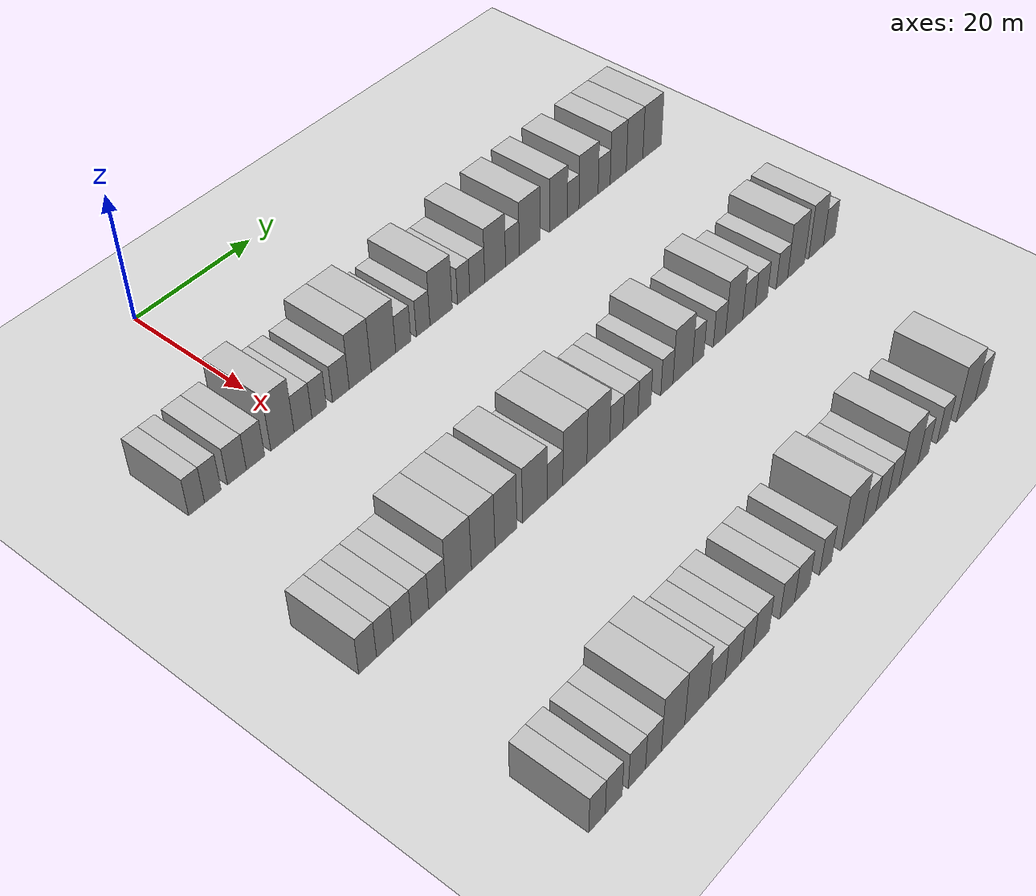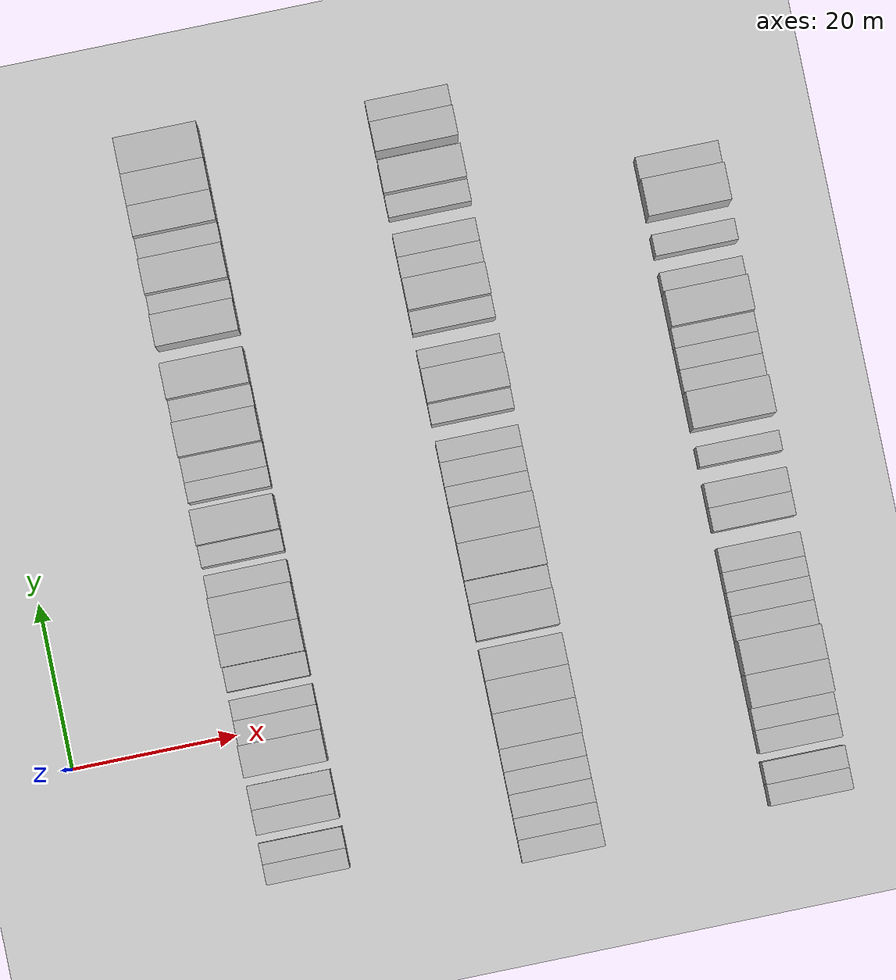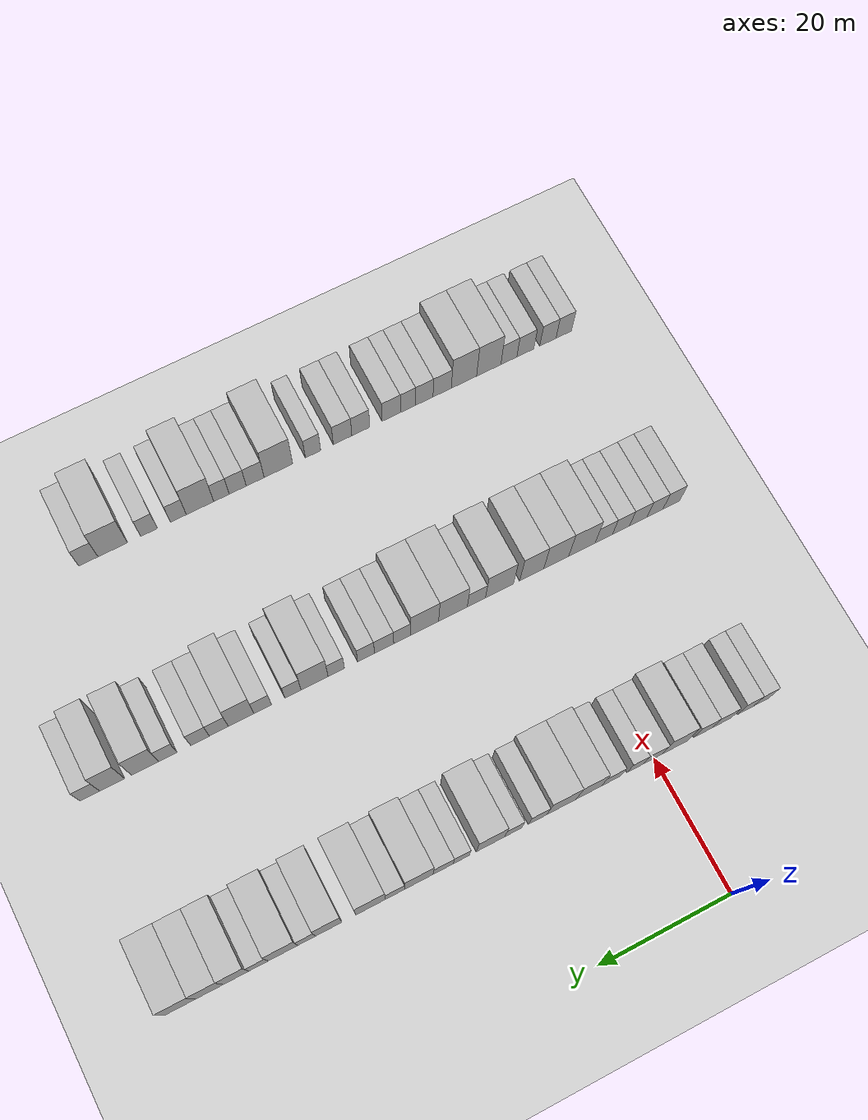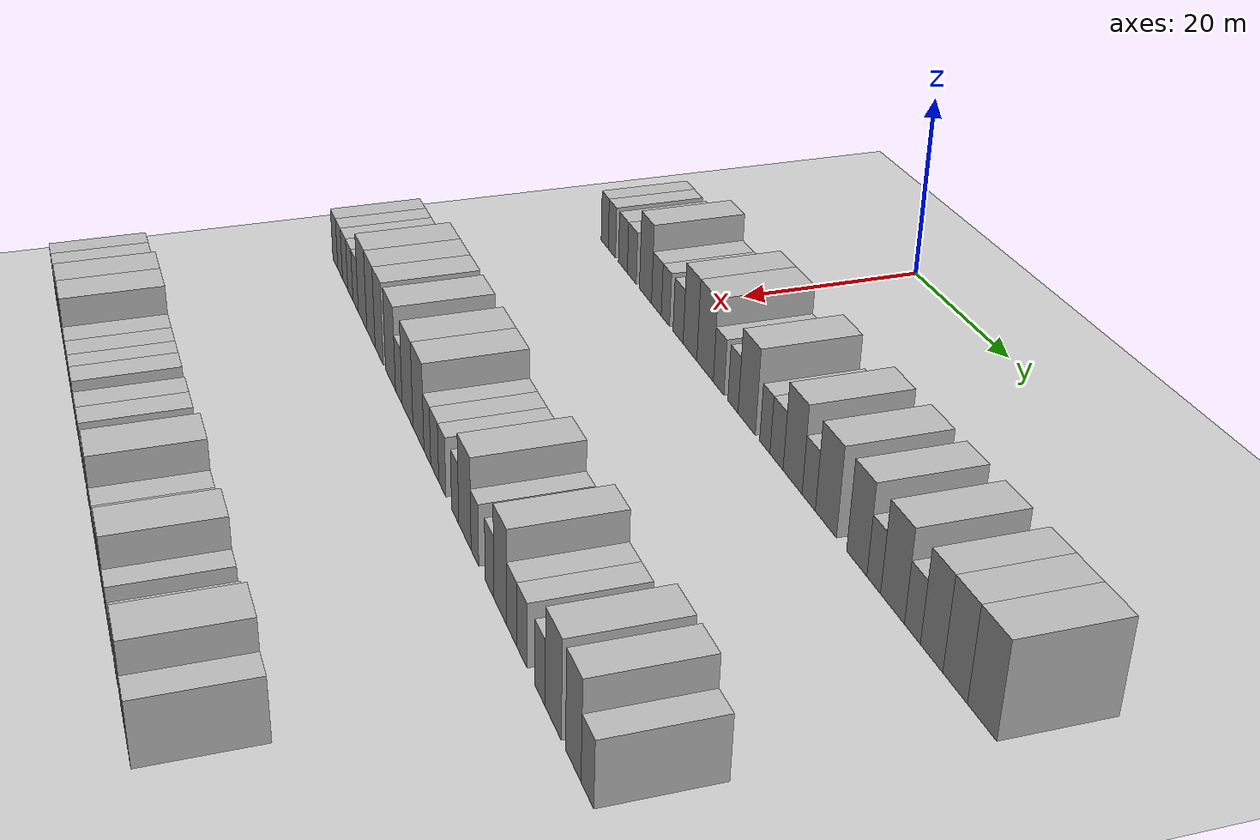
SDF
<sdf version="1.6">
 <world name="default">
  <include><name>ground_plane_1</name><uri>model://HANNAS_ground_plane</uri></include>
  <model name="building_109">
   <static>1</static>
   <pose>25.0000 -16.7447 0 0.000000 0.000000 0.000000</pose>
   <link name="link">
    <pose>0 0 3.00 0 0 0</pose>
    <collision name="collision"><geometry><box><size>10.0000 2.4420 6.0000</size></box></geometry></collision>
    <visual name="visual">
     <cast_shadows>0</cast_shadows>
     <geometry><box><size>10.0000 2.4420 6.0000</size></box></geometry>
     <material>
      <script>
       <uri>model://HANNAS_wall/materials/scripts</uri>
       <uri>model://HANNAS_wall/materials/textures</uri>
       <name>vrc/HANNAS_wall</name>
      </script>
     </material>
    </visual>
   </link>
  </model>
  <model name="building_110">
   <static>1</static>
   <pose>25.0000 -14.2562 0 0.000000 0.000000 0.000000</pose>
   <link name="link">
    <pose>0 0 3.00 0 0 0</pose>
    <collision name="collision"><geometry><box><size>10.0000 2.5349 6.0000</size></box></geometry></collision>
    <visual name="visual">
     <cast_shadows>0</cast_shadows>
     <geometry><box><size>10.0000 2.5349 6.0000</size></box></geometry>
     <material>
      <script>
       <uri>model://HANNAS_wall/materials/scripts</uri>
       <uri>model://HANNAS_wall/materials/textures</uri>
       <name>vrc/HANNAS_wall</name>
      </script>
     </material>
    </visual>
   </link>
  </model>
  <model name="building_111">
   <static>1</static>
   <pose>25.0000 -10.4996 0 0.000000 0.000000 0.000000</pose>
   <link name="link">
    <pose>0 0 3.00 0 0 0</pose>
    <collision name="collision"><geometry><box><size>10.0000 2.9784 6.0000</size></box></geometry></collision>
    <visual name="visual">
     <cast_shadows>0</cast_shadows>
     <geometry><box><size>10.0000 2.9784 6.0000</size></box></geometry>
     <material>
      <script>
       <uri>model://HANNAS_wall/materials/scripts</uri>
       <uri>model://HANNAS_wall/materials/textures</uri>
       <name>vrc/HANNAS_wall</name>
      </script>
     </material>
    </visual>
   </link>
  </model>
  <model name="building_112">
   <static>1</static>
   <pose>25.0000 -7.5517 0 0.000000 0.000000 0.000000</pose>
   <link name="link">
    <pose>0 0 3.00 0 0 0</pose>
    <collision name="collision"><geometry><box><size>10.0000 2.9173 6.0000</size></box></geometry></collision>
    <visual name="visual">
     <cast_shadows>0</cast_shadows>
     <geometry><box><size>10.0000 2.9173 6.0000</size></box></geometry>
     <material>
      <script>
       <uri>model://HANNAS_wall/materials/scripts</uri>
       <uri>model://HANNAS_wall/materials/textures</uri>
       <name>vrc/HANNAS_wall</name>
      </script>
     </material>
    </visual>
   </link>
  </model>
  <model name="building_113">
   <static>1</static>
   <pose>25.0000 -3.1796 0 0.000000 0.000000 0.000000</pose>
   <link name="link">
    <pose>0 0 4.50 0 0 0</pose>
    <collision name="collision"><geometry><box><size>10.0000 3.8268 9.0000</size></box></geometry></collision>
    <visual name="visual">
     <cast_shadows>0</cast_shadows>
     <geometry><box><size>10.0000 3.8268 9.0000</size></box></geometry>
     <material>
      <script>
       <uri>model://HANNAS_wall/materials/scripts</uri>
       <uri>model://HANNAS_wall/materials/textures</uri>
       <name>vrc/HANNAS_wall</name>
      </script>
     </material>
    </visual>
   </link>
  </model>
  <model name="building_114">
   <static>1</static>
   <pose>25.0000 0.2218 0 0.000000 0.000000 0.000000</pose>
   <link name="link">
    <pose>0 0 3.00 0 0 0</pose>
    <collision name="collision"><geometry><box><size>10.0000 2.9760 6.0000</size></box></geometry></collision>
    <visual name="visual">
     <cast_shadows>0</cast_shadows>
     <geometry><box><size>10.0000 2.9760 6.0000</size></box></geometry>
     <material>
      <script>
       <uri>model://HANNAS_wall/materials/scripts</uri>
       <uri>model://HANNAS_wall/materials/textures</uri>
       <name>vrc/HANNAS_wall</name>
      </script>
     </material>
    </visual>
   </link>
  </model>
  <model name="building_115">
   <static>1</static>
   <pose>25.0000 2.9513 0 0.000000 0.000000 0.000000</pose>
   <link name="link">
    <pose>0 0 3.00 0 0 0</pose>
    <collision name="collision"><geometry><box><size>10.0000 2.4831 6.0000</size></box></geometry></collision>
    <visual name="visual">
     <cast_shadows>0</cast_shadows>
     <geometry><box><size>10.0000 2.4831 6.0000</size></box></geometry>
     <material>
      <script>
       <uri>model://HANNAS_wall/materials/scripts</uri>
       <uri>model://HANNAS_wall/materials/textures</uri>
       <name>vrc/HANNAS_wall</name>
      </script>
     </material>
    </visual>
   </link>
  </model>
  <model name="building_116">
   <static>1</static>
   <pose>25.0000 6.6526 0 0.000000 0.000000 0.000000</pose>
   <link name="link">
    <pose>0 0 3.00 0 0 0</pose>
    <collision name="collision"><geometry><box><size>10.0000 2.9195 6.0000</size></box></geometry></collision>
    <visual name="visual">
     <cast_shadows>0</cast_shadows>
     <geometry><box><size>10.0000 2.9195 6.0000</size></box></geometry>
     <material>
      <script>
       <uri>model://HANNAS_wall/materials/scripts</uri>
       <uri>model://HANNAS_wall/materials/textures</uri>
       <name>vrc/HANNAS_wall</name>
      </script>
     </material>
    </visual>
   </link>
  </model>
  <model name="building_117">
   <static>1</static>
   <pose>25.0000 10.0349 0 0.000000 0.000000 0.000000</pose>
   <link name="link">
    <pose>0 0 4.50 0 0 0</pose>
    <collision name="collision"><geometry><box><size>10.0000 3.8451 9.0000</size></box></geometry></collision>
    <visual name="visual">
     <cast_shadows>0</cast_shadows>
     <geometry><box><size>10.0000 3.8451 9.0000</size></box></geometry>
     <material>
      <script>
       <uri>model://HANNAS_wall/materials/scripts</uri>
       <uri>model://HANNAS_wall/materials/textures</uri>
       <name>vrc/HANNAS_wall</name>
      </script>
     </material>
    </visual>
   </link>
  </model>
  <model name="building_118">
   <static>1</static>
   <pose>25.0000 14.1779 0 0.000000 0.000000 0.000000</pose>
   <link name="link">
    <pose>0 0 4.50 0 0 0</pose>
    <collision name="collision"><geometry><box><size>10.0000 4.4411 9.0000</size></box></geometry></collision>
    <visual name="visual">
     <cast_shadows>0</cast_shadows>
     <geometry><box><size>10.0000 4.4411 9.0000</size></box></geometry>
     <material>
      <script>
       <uri>model://HANNAS_wall/materials/scripts</uri>
       <uri>model://HANNAS_wall/materials/textures</uri>
       <name>vrc/HANNAS_wall</name>
      </script>
     </material>
    </visual>
   </link>
  </model>
  <model name="building_119">
   <static>1</static>
   <pose>25.0000 17.7858 0 0.000000 0.000000 0.000000</pose>
   <link name="link">
    <pose>0 0 3.00 0 0 0</pose>
    <collision name="collision"><geometry><box><size>10.0000 2.7746 6.0000</size></box></geometry></collision>
    <visual name="visual">
     <cast_shadows>0</cast_shadows>
     <geometry><box><size>10.0000 2.7746 6.0000</size></box></geometry>
     <material>
      <script>
       <uri>model://HANNAS_wall/materials/scripts</uri>
       <uri>model://HANNAS_wall/materials/textures</uri>
       <name>vrc/HANNAS_wall</name>
      </script>
     </material>
    </visual>
   </link>
  </model>
  <model name="building_120">
   <static>1</static>
   <pose>25.0000 21.4561 0 0.000000 0.000000 0.000000</pose>
   <link name="link">
    <pose>0 0 3.00 0 0 0</pose>
    <collision name="collision"><geometry><box><size>10.0000 2.5661 6.0000</size></box></geometry></collision>
    <visual name="visual">
     <cast_shadows>0</cast_shadows>
     <geometry><box><size>10.0000 2.5661 6.0000</size></box></geometry>
     <material>
      <script>
       <uri>model://HANNAS_wall/materials/scripts</uri>
       <uri>model://HANNAS_wall/materials/textures</uri>
       <name>vrc/HANNAS_wall</name>
      </script>
     </material>
    </visual>
   </link>
  </model>
  <model name="building_121">
   <static>1</static>
   <pose>25.0000 24.8507 0 0.000000 0.000000 0.000000</pose>
   <link name="link">
    <pose>0 0 4.50 0 0 0</pose>
    <collision name="collision"><geometry><box><size>10.0000 4.2230 9.0000</size></box></geometry></collision>
    <visual name="visual">
     <cast_shadows>0</cast_shadows>
     <geometry><box><size>10.0000 4.2230 9.0000</size></box></geometry>
     <material>
      <script>
       <uri>model://HANNAS_wall/materials/scripts</uri>
       <uri>model://HANNAS_wall/materials/textures</uri>
       <name>vrc/HANNAS_wall</name>
      </script>
     </material>
    </visual>
   </link>
  </model>
  <model name="building_122">
   <static>1</static>
   <pose>25.0000 29.1677 0 0.000000 0.000000 0.000000</pose>
   <link name="link">
    <pose>0 0 3.00 0 0 0</pose>
    <collision name="collision"><geometry><box><size>10.0000 2.4112 6.0000</size></box></geometry></collision>
    <visual name="visual">
     <cast_shadows>0</cast_shadows>
     <geometry><box><size>10.0000 2.4112 6.0000</size></box></geometry>
     <material>
      <script>
       <uri>model://HANNAS_wall/materials/scripts</uri>
       <uri>model://HANNAS_wall/materials/textures</uri>
       <name>vrc/HANNAS_wall</name>
      </script>
     </material>
    </visual>
   </link>
  </model>
  <model name="building_123">
   <static>1</static>
   <pose>25.0000 31.8573 0 0.000000 0.000000 0.000000</pose>
   <link name="link">
    <pose>0 0 3.00 0 0 0</pose>
    <collision name="collision"><geometry><box><size>10.0000 2.9680 6.0000</size></box></geometry></collision>
    <visual name="visual">
     <cast_shadows>0</cast_shadows>
     <geometry><box><size>10.0000 2.9680 6.0000</size></box></geometry>
     <material>
      <script>
       <uri>model://HANNAS_wall/materials/scripts</uri>
       <uri>model://HANNAS_wall/materials/textures</uri>
       <name>vrc/HANNAS_wall</name>
      </script>
     </material>
    </visual>
   </link>
  </model>
  <model name="building_124">
   <static>1</static>
   <pose>25.0000 35.4224 0 0.000000 0.000000 0.000000</pose>
   <link name="link">
    <pose>0 0 4.50 0 0 0</pose>
    <collision name="collision"><geometry><box><size>10.0000 4.1623 9.0000</size></box></geometry></collision>
    <visual name="visual">
     <cast_shadows>0</cast_shadows>
     <geometry><box><size>10.0000 4.1623 9.0000</size></box></geometry>
     <material>
      <script>
       <uri>model://HANNAS_wall/materials/scripts</uri>
       <uri>model://HANNAS_wall/materials/textures</uri>
       <name>vrc/HANNAS_wall</name>
      </script>
     </material>
    </visual>
   </link>
  </model>
  <model name="building_125">
   <static>1</static>
   <pose>25.0000 38.9047 0 0.000000 0.000000 0.000000</pose>
   <link name="link">
    <pose>0 0 3.00 0 0 0</pose>
    <collision name="collision"><geometry><box><size>10.0000 2.8022 6.0000</size></box></geometry></collision>
    <visual name="visual">
     <cast_shadows>0</cast_shadows>
     <geometry><box><size>10.0000 2.8022 6.0000</size></box></geometry>
     <material>
      <script>
       <uri>model://HANNAS_wall/materials/scripts</uri>
       <uri>model://HANNAS_wall/materials/textures</uri>
       <name>vrc/HANNAS_wall</name>
      </script>
     </material>
    </visual>
   </link>
  </model>
  <model name="building_126">
   <static>1</static>
   <pose>25.0000 42.4560 0 0.000000 0.000000 0.000000</pose>
   <link name="link">
    <pose>0 0 4.50 0 0 0</pose>
    <collision name="collision"><geometry><box><size>10.0000 4.3004 9.0000</size></box></geometry></collision>
    <visual name="visual">
     <cast_shadows>0</cast_shadows>
     <geometry><box><size>10.0000 4.3004 9.0000</size></box></geometry>
     <material>
      <script>
       <uri>model://HANNAS_wall/materials/scripts</uri>
       <uri>model://HANNAS_wall/materials/textures</uri>
       <name>vrc/HANNAS_wall</name>
      </script>
     </material>
    </visual>
   </link>
  </model>
  <model name="building_127">
   <static>1</static>
   <pose>25.0000 48.5284 0 0.000000 0.000000 0.000000</pose>
   <link name="link">
    <pose>0 0 4.50 0 0 0</pose>
    <collision name="collision"><geometry><box><size>10.0000 3.8443 9.0000</size></box></geometry></collision>
    <visual name="visual">
     <cast_shadows>0</cast_shadows>
     <geometry><box><size>10.0000 3.8443 9.0000</size></box></geometry>
     <material>
      <script>
       <uri>model://HANNAS_wall/materials/scripts</uri>
       <uri>model://HANNAS_wall/materials/textures</uri>
       <name>vrc/HANNAS_wall</name>
      </script>
     </material>
    </visual>
   </link>
  </model>
  <model name="building_128">
   <static>1</static>
   <pose>25.0000 51.7040 0 0.000000 0.000000 0.000000</pose>
   <link name="link">
    <pose>0 0 3.00 0 0 0</pose>
    <collision name="collision"><geometry><box><size>10.0000 2.5070 6.0000</size></box></geometry></collision>
    <visual name="visual">
     <cast_shadows>0</cast_shadows>
     <geometry><box><size>10.0000 2.5070 6.0000</size></box></geometry>
     <material>
      <script>
       <uri>model://HANNAS_wall/materials/scripts</uri>
       <uri>model://HANNAS_wall/materials/textures</uri>
       <name>vrc/HANNAS_wall</name>
      </script>
     </material>
    </visual>
   </link>
  </model>
  <model name="building_129">
   <static>1</static>
   <pose>25.0000 55.0690 0 0.000000 0.000000 0.000000</pose>
   <link name="link">
    <pose>0 0 4.50 0 0 0</pose>
    <collision name="collision"><geometry><box><size>10.0000 4.2230 9.0000</size></box></geometry></collision>
    <visual name="visual">
     <cast_shadows>0</cast_shadows>
     <geometry><box><size>10.0000 4.2230 9.0000</size></box></geometry>
     <material>
      <script>
       <uri>model://HANNAS_wall/materials/scripts</uri>
       <uri>model://HANNAS_wall/materials/textures</uri>
       <name>vrc/HANNAS_wall</name>
      </script>
     </material>
    </visual>
   </link>
  </model>
  <model name="building_130">
   <static>1</static>
   <pose>25.0000 58.5306 0 0.000000 0.000000 0.000000</pose>
   <link name="link">
    <pose>0 0 3.00 0 0 0</pose>
    <collision name="collision"><geometry><box><size>10.0000 2.7001 6.0000</size></box></geometry></collision>
    <visual name="visual">
     <cast_shadows>0</cast_shadows>
     <geometry><box><size>10.0000 2.7001 6.0000</size></box></geometry>
     <material>
      <script>
       <uri>model://HANNAS_wall/materials/scripts</uri>
       <uri>model://HANNAS_wall/materials/textures</uri>
       <name>vrc/HANNAS_wall</name>
      </script>
     </material>
    </visual>
   </link>
  </model>
  <model name="building_131">
   <static>1</static>
   <pose>25.0000 61.7159 0 0.000000 0.000000 0.000000</pose>
   <link name="link">
    <pose>0 0 4.50 0 0 0</pose>
    <collision name="collision"><geometry><box><size>10.0000 3.6706 9.0000</size></box></geometry></collision>
    <visual name="visual">
     <cast_shadows>0</cast_shadows>
     <geometry><box><size>10.0000 3.6706 9.0000</size></box></geometry>
     <material>
      <script>
       <uri>model://HANNAS_wall/materials/scripts</uri>
       <uri>model://HANNAS_wall/materials/textures</uri>
       <name>vrc/HANNAS_wall</name>
      </script>
     </material>
    </visual>
   </link>
  </model>
  <model name="building_132">
   <static>1</static>
   <pose>25.0000 65.4761 0 0.000000 0.000000 0.000000</pose>
   <link name="link">
    <pose>0 0 4.50 0 0 0</pose>
    <collision name="collision"><geometry><box><size>10.0000 3.8498 9.0000</size></box></geometry></collision>
    <visual name="visual">
     <cast_shadows>0</cast_shadows>
     <geometry><box><size>10.0000 3.8498 9.0000</size></box></geometry>
     <material>
      <script>
       <uri>model://HANNAS_wall/materials/scripts</uri>
       <uri>model://HANNAS_wall/materials/textures</uri>
       <name>vrc/HANNAS_wall</name>
      </script>
     </material>
    </visual>
   </link>
  </model>
  <model name="building_133">
   <static>1</static>
   <pose>25.0000 69.5877 0 0.000000 0.000000 0.000000</pose>
   <link name="link">
    <pose>0 0 4.50 0 0 0</pose>
    <collision name="collision"><geometry><box><size>10.0000 4.3734 9.0000</size></box></geometry></collision>
    <visual name="visual">
     <cast_shadows>0</cast_shadows>
     <geometry><box><size>10.0000 4.3734 9.0000</size></box></geometry>
     <material>
      <script>
       <uri>model://HANNAS_wall/materials/scripts</uri>
       <uri>model://HANNAS_wall/materials/textures</uri>
       <name>vrc/HANNAS_wall</name>
      </script>
     </material>
    </visual>
   </link>
  </model>
  <model name="building_339">
   <static>1</static>
   <pose>55.0000 -20.1629 0 0.000000 0.000000 0.000000</pose>
   <link name="link">
    <pose>0 0 3.00 0 0 0</pose>
    <collision name="collision"><geometry><box><size>10.0000 2.7226 6.0000</size></box></geometry></collision>
    <visual name="visual">
     <cast_shadows>0</cast_shadows>
     <geometry><box><size>10.0000 2.7226 6.0000</size></box></geometry>
     <material>
      <script>
       <uri>model://HANNAS_wall/materials/scripts</uri>
       <uri>model://HANNAS_wall/materials/textures</uri>
       <name>vrc/HANNAS_wall</name>
      </script>
     </material>
    </visual>
   </link>
  </model>
  <model name="building_340">
   <static>1</static>
   <pose>55.0000 -17.5057 0 0.000000 0.000000 0.000000</pose>
   <link name="link">
    <pose>0 0 3.00 0 0 0</pose>
    <collision name="collision"><geometry><box><size>10.0000 2.5919 6.0000</size></box></geometry></collision>
    <visual name="visual">
     <cast_shadows>0</cast_shadows>
     <geometry><box><size>10.0000 2.5919 6.0000</size></box></geometry>
     <material>
      <script>
       <uri>model://HANNAS_wall/materials/scripts</uri>
       <uri>model://HANNAS_wall/materials/textures</uri>
       <name>vrc/HANNAS_wall</name>
      </script>
     </material>
    </visual>
   </link>
  </model>
  <model name="building_341">
   <static>1</static>
   <pose>55.0000 -14.7963 0 0.000000 0.000000 0.000000</pose>
   <link name="link">
    <pose>0 0 3.00 0 0 0</pose>
    <collision name="collision"><geometry><box><size>10.0000 2.8268 6.0000</size></box></geometry></collision>
    <visual name="visual">
     <cast_shadows>0</cast_shadows>
     <geometry><box><size>10.0000 2.8268 6.0000</size></box></geometry>
     <material>
      <script>
       <uri>model://HANNAS_wall/materials/scripts</uri>
       <uri>model://HANNAS_wall/materials/textures</uri>
       <name>vrc/HANNAS_wall</name>
      </script>
     </material>
    </visual>
   </link>
  </model>
  <model name="building_342">
   <static>1</static>
   <pose>55.0000 -12.0178 0 0.000000 0.000000 0.000000</pose>
   <link name="link">
    <pose>0 0 3.00 0 0 0</pose>
    <collision name="collision"><geometry><box><size>10.0000 2.7303 6.0000</size></box></geometry></collision>
    <visual name="visual">
     <cast_shadows>0</cast_shadows>
     <geometry><box><size>10.0000 2.7303 6.0000</size></box></geometry>
     <material>
      <script>
       <uri>model://HANNAS_wall/materials/scripts</uri>
       <uri>model://HANNAS_wall/materials/textures</uri>
       <name>vrc/HANNAS_wall</name>
      </script>
     </material>
    </visual>
   </link>
  </model>
  <model name="building_343">
   <static>1</static>
   <pose>55.0000 -9.2667 0 0.000000 0.000000 0.000000</pose>
   <link name="link">
    <pose>0 0 3.00 0 0 0</pose>
    <collision name="collision"><geometry><box><size>10.0000 2.7718 6.0000</size></box></geometry></collision>
    <visual name="visual">
     <cast_shadows>0</cast_shadows>
     <geometry><box><size>10.0000 2.7718 6.0000</size></box></geometry>
     <material>
      <script>
       <uri>model://HANNAS_wall/materials/scripts</uri>
       <uri>model://HANNAS_wall/materials/textures</uri>
       <name>vrc/HANNAS_wall</name>
      </script>
     </material>
    </visual>
   </link>
  </model>
  <model name="building_344">
   <static>1</static>
   <pose>55.0000 -5.7747 0 0.000000 0.000000 0.000000</pose>
   <link name="link">
    <pose>0 0 4.50 0 0 0</pose>
    <collision name="collision"><geometry><box><size>10.0000 4.2122 9.0000</size></box></geometry></collision>
    <visual name="visual">
     <cast_shadows>0</cast_shadows>
     <geometry><box><size>10.0000 4.2122 9.0000</size></box></geometry>
     <material>
      <script>
       <uri>model://HANNAS_wall/materials/scripts</uri>
       <uri>model://HANNAS_wall/materials/textures</uri>
       <name>vrc/HANNAS_wall</name>
      </script>
     </material>
    </visual>
   </link>
  </model>
  <model name="building_345">
   <static>1</static>
   <pose>55.0000 -1.6842 0 0.000000 0.000000 0.000000</pose>
   <link name="link">
    <pose>0 0 4.50 0 0 0</pose>
    <collision name="collision"><geometry><box><size>10.0000 3.9689 9.0000</size></box></geometry></collision>
    <visual name="visual">
     <cast_shadows>0</cast_shadows>
     <geometry><box><size>10.0000 3.9689 9.0000</size></box></geometry>
     <material>
      <script>
       <uri>model://HANNAS_wall/materials/scripts</uri>
       <uri>model://HANNAS_wall/materials/textures</uri>
       <name>vrc/HANNAS_wall</name>
      </script>
     </material>
    </visual>
   </link>
  </model>
  <model name="building_346">
   <static>1</static>
   <pose>55.0000 2.1880 0 0.000000 0.000000 0.000000</pose>
   <link name="link">
    <pose>0 0 4.50 0 0 0</pose>
    <collision name="collision"><geometry><box><size>10.0000 3.7755 9.0000</size></box></geometry></collision>
    <visual name="visual">
     <cast_shadows>0</cast_shadows>
     <geometry><box><size>10.0000 3.7755 9.0000</size></box></geometry>
     <material>
      <script>
       <uri>model://HANNAS_wall/materials/scripts</uri>
       <uri>model://HANNAS_wall/materials/textures</uri>
       <name>vrc/HANNAS_wall</name>
      </script>
     </material>
    </visual>
   </link>
  </model>
  <model name="building_347">
   <static>1</static>
   <pose>55.0000 7.2687 0 0.000000 0.000000 0.000000</pose>
   <link name="link">
    <pose>0 0 4.50 0 0 0</pose>
    <collision name="collision"><geometry><box><size>10.0000 4.3858 9.0000</size></box></geometry></collision>
    <visual name="visual">
     <cast_shadows>0</cast_shadows>
     <geometry><box><size>10.0000 4.3858 9.0000</size></box></geometry>
     <material>
      <script>
       <uri>model://HANNAS_wall/materials/scripts</uri>
       <uri>model://HANNAS_wall/materials/textures</uri>
       <name>vrc/HANNAS_wall</name>
      </script>
     </material>
    </visual>
   </link>
  </model>
  <model name="building_348">
   <static>1</static>
   <pose>55.0000 10.8758 0 0.000000 0.000000 0.000000</pose>
   <link name="link">
    <pose>0 0 3.00 0 0 0</pose>
    <collision name="collision"><geometry><box><size>10.0000 2.8284 6.0000</size></box></geometry></collision>
    <visual name="visual">
     <cast_shadows>0</cast_shadows>
     <geometry><box><size>10.0000 2.8284 6.0000</size></box></geometry>
     <material>
      <script>
       <uri>model://HANNAS_wall/materials/scripts</uri>
       <uri>model://HANNAS_wall/materials/textures</uri>
       <name>vrc/HANNAS_wall</name>
      </script>
     </material>
    </visual>
   </link>
  </model>
  <model name="building_349">
   <static>1</static>
   <pose>55.0000 14.5181 0 0.000000 0.000000 0.000000</pose>
   <link name="link">
    <pose>0 0 4.50 0 0 0</pose>
    <collision name="collision"><geometry><box><size>10.0000 4.4561 9.0000</size></box></geometry></collision>
    <visual name="visual">
     <cast_shadows>0</cast_shadows>
     <geometry><box><size>10.0000 4.4561 9.0000</size></box></geometry>
     <material>
      <script>
       <uri>model://HANNAS_wall/materials/scripts</uri>
       <uri>model://HANNAS_wall/materials/textures</uri>
       <name>vrc/HANNAS_wall</name>
      </script>
     </material>
    </visual>
   </link>
  </model>
  <model name="building_350">
   <static>1</static>
   <pose>55.0000 18.9154 0 0.000000 0.000000 0.000000</pose>
   <link name="link">
    <pose>0 0 4.50 0 0 0</pose>
    <collision name="collision"><geometry><box><size>10.0000 4.3386 9.0000</size></box></geometry></collision>
    <visual name="visual">
     <cast_shadows>0</cast_shadows>
     <geometry><box><size>10.0000 4.3386 9.0000</size></box></geometry>
     <material>
      <script>
       <uri>model://HANNAS_wall/materials/scripts</uri>
       <uri>model://HANNAS_wall/materials/textures</uri>
       <name>vrc/HANNAS_wall</name>
      </script>
     </material>
    </visual>
   </link>
  </model>
  <model name="building_351">
   <static>1</static>
   <pose>55.0000 22.3686 0 0.000000 0.000000 0.000000</pose>
   <link name="link">
    <pose>0 0 3.00 0 0 0</pose>
    <collision name="collision"><geometry><box><size>10.0000 2.5678 6.0000</size></box></geometry></collision>
    <visual name="visual">
     <cast_shadows>0</cast_shadows>
     <geometry><box><size>10.0000 2.5678 6.0000</size></box></geometry>
     <material>
      <script>
       <uri>model://HANNAS_wall/materials/scripts</uri>
       <uri>model://HANNAS_wall/materials/textures</uri>
       <name>vrc/HANNAS_wall</name>
      </script>
     </material>
    </visual>
   </link>
  </model>
  <model name="building_352">
   <static>1</static>
   <pose>55.0000 25.1296 0 0.000000 0.000000 0.000000</pose>
   <link name="link">
    <pose>0 0 3.00 0 0 0</pose>
    <collision name="collision"><geometry><box><size>10.0000 2.9542 6.0000</size></box></geometry></collision>
    <visual name="visual">
     <cast_shadows>0</cast_shadows>
     <geometry><box><size>10.0000 2.9542 6.0000</size></box></geometry>
     <material>
      <script>
       <uri>model://HANNAS_wall/materials/scripts</uri>
       <uri>model://HANNAS_wall/materials/textures</uri>
       <name>vrc/HANNAS_wall</name>
      </script>
     </material>
    </visual>
   </link>
  </model>
  <model name="building_353">
   <static>1</static>
   <pose>55.0000 27.8919 0 0.000000 0.000000 0.000000</pose>
   <link name="link">
    <pose>0 0 3.00 0 0 0</pose>
    <collision name="collision"><geometry><box><size>10.0000 2.5704 6.0000</size></box></geometry></collision>
    <visual name="visual">
     <cast_shadows>0</cast_shadows>
     <geometry><box><size>10.0000 2.5704 6.0000</size></box></geometry>
     <material>
      <script>
       <uri>model://HANNAS_wall/materials/scripts</uri>
       <uri>model://HANNAS_wall/materials/textures</uri>
       <name>vrc/HANNAS_wall</name>
      </script>
     </material>
    </visual>
   </link>
  </model>
  <model name="building_354">
   <static>1</static>
   <pose>55.0000 32.4131 0 0.000000 0.000000 0.000000</pose>
   <link name="link">
    <pose>0 0 3.00 0 0 0</pose>
    <collision name="collision"><geometry><box><size>10.0000 2.4719 6.0000</size></box></geometry></collision>
    <visual name="visual">
     <cast_shadows>0</cast_shadows>
     <geometry><box><size>10.0000 2.4719 6.0000</size></box></geometry>
     <material>
      <script>
       <uri>model://HANNAS_wall/materials/scripts</uri>
       <uri>model://HANNAS_wall/materials/textures</uri>
       <name>vrc/HANNAS_wall</name>
      </script>
     </material>
    </visual>
   </link>
  </model>
  <model name="building_355">
   <static>1</static>
   <pose>55.0000 35.6887 0 0.000000 0.000000 0.000000</pose>
   <link name="link">
    <pose>0 0 4.50 0 0 0</pose>
    <collision name="collision"><geometry><box><size>10.0000 4.0794 9.0000</size></box></geometry></collision>
    <visual name="visual">
     <cast_shadows>0</cast_shadows>
     <geometry><box><size>10.0000 4.0794 9.0000</size></box></geometry>
     <material>
      <script>
       <uri>model://HANNAS_wall/materials/scripts</uri>
       <uri>model://HANNAS_wall/materials/textures</uri>
       <name>vrc/HANNAS_wall</name>
      </script>
     </material>
    </visual>
   </link>
  </model>
  <model name="building_356">
   <static>1</static>
   <pose>55.0000 38.9458 0 0.000000 0.000000 0.000000</pose>
   <link name="link">
    <pose>0 0 3.00 0 0 0</pose>
    <collision name="collision"><geometry><box><size>10.0000 2.4349 6.0000</size></box></geometry></collision>
    <visual name="visual">
     <cast_shadows>0</cast_shadows>
     <geometry><box><size>10.0000 2.4349 6.0000</size></box></geometry>
     <material>
      <script>
       <uri>model://HANNAS_wall/materials/scripts</uri>
       <uri>model://HANNAS_wall/materials/textures</uri>
       <name>vrc/HANNAS_wall</name>
      </script>
     </material>
    </visual>
   </link>
  </model>
  <model name="building_357">
   <static>1</static>
   <pose>55.0000 43.4854 0 0.000000 0.000000 0.000000</pose>
   <link name="link">
    <pose>0 0 3.00 0 0 0</pose>
    <collision name="collision"><geometry><box><size>10.0000 2.6443 6.0000</size></box></geometry></collision>
    <visual name="visual">
     <cast_shadows>0</cast_shadows>
     <geometry><box><size>10.0000 2.6443 6.0000</size></box></geometry>
     <material>
      <script>
       <uri>model://HANNAS_wall/materials/scripts</uri>
       <uri>model://HANNAS_wall/materials/textures</uri>
       <name>vrc/HANNAS_wall</name>
      </script>
     </material>
    </visual>
   </link>
  </model>
  <model name="building_358">
   <static>1</static>
   <pose>55.0000 46.7099 0 0.000000 0.000000 0.000000</pose>
   <link name="link">
    <pose>0 0 4.50 0 0 0</pose>
    <collision name="collision"><geometry><box><size>10.0000 3.8047 9.0000</size></box></geometry></collision>
    <visual name="visual">
     <cast_shadows>0</cast_shadows>
     <geometry><box><size>10.0000 3.8047 9.0000</size></box></geometry>
     <material>
      <script>
       <uri>model://HANNAS_wall/materials/scripts</uri>
       <uri>model://HANNAS_wall/materials/textures</uri>
       <name>vrc/HANNAS_wall</name>
      </script>
     </material>
    </visual>
   </link>
  </model>
  <model name="building_359">
   <static>1</static>
   <pose>55.0000 50.0198 0 0.000000 0.000000 0.000000</pose>
   <link name="link">
    <pose>0 0 3.00 0 0 0</pose>
    <collision name="collision"><geometry><box><size>10.0000 2.8152 6.0000</size></box></geometry></collision>
    <visual name="visual">
     <cast_shadows>0</cast_shadows>
     <geometry><box><size>10.0000 2.8152 6.0000</size></box></geometry>
     <material>
      <script>
       <uri>model://HANNAS_wall/materials/scripts</uri>
       <uri>model://HANNAS_wall/materials/textures</uri>
       <name>vrc/HANNAS_wall</name>
      </script>
     </material>
    </visual>
   </link>
  </model>
  <model name="building_360">
   <static>1</static>
   <pose>55.0000 52.8167 0 0.000000 0.000000 0.000000</pose>
   <link name="link">
    <pose>0 0 3.00 0 0 0</pose>
    <collision name="collision"><geometry><box><size>10.0000 2.7785 6.0000</size></box></geometry></collision>
    <visual name="visual">
     <cast_shadows>0</cast_shadows>
     <geometry><box><size>10.0000 2.7785 6.0000</size></box></geometry>
     <material>
      <script>
       <uri>model://HANNAS_wall/materials/scripts</uri>
       <uri>model://HANNAS_wall/materials/textures</uri>
       <name>vrc/HANNAS_wall</name>
      </script>
     </material>
    </visual>
   </link>
  </model>
  <model name="building_361">
   <static>1</static>
   <pose>55.0000 57.5472 0 0.000000 0.000000 0.000000</pose>
   <link name="link">
    <pose>0 0 3.00 0 0 0</pose>
    <collision name="collision"><geometry><box><size>10.0000 2.6827 6.0000</size></box></geometry></collision>
    <visual name="visual">
     <cast_shadows>0</cast_shadows>
     <geometry><box><size>10.0000 2.6827 6.0000</size></box></geometry>
     <material>
      <script>
       <uri>model://HANNAS_wall/materials/scripts</uri>
       <uri>model://HANNAS_wall/materials/textures</uri>
       <name>vrc/HANNAS_wall</name>
      </script>
     </material>
    </visual>
   </link>
  </model>
  <model name="building_362">
   <static>1</static>
   <pose>55.0000 60.8909 0 0.000000 0.000000 0.000000</pose>
   <link name="link">
    <pose>0 0 4.50 0 0 0</pose>
    <collision name="collision"><geometry><box><size>10.0000 4.0046 9.0000</size></box></geometry></collision>
    <visual name="visual">
     <cast_shadows>0</cast_shadows>
     <geometry><box><size>10.0000 4.0046 9.0000</size></box></geometry>
     <material>
      <script>
       <uri>model://HANNAS_wall/materials/scripts</uri>
       <uri>model://HANNAS_wall/materials/textures</uri>
       <name>vrc/HANNAS_wall</name>
      </script>
     </material>
    </visual>
   </link>
  </model>
  <model name="building_363">
   <static>1</static>
   <pose>55.0000 65.6993 0 0.000000 0.000000 0.000000</pose>
   <link name="link">
    <pose>0 0 4.50 0 0 0</pose>
    <collision name="collision"><geometry><box><size>10.0000 3.6122 9.0000</size></box></geometry></collision>
    <visual name="visual">
     <cast_shadows>0</cast_shadows>
     <geometry><box><size>10.0000 3.6122 9.0000</size></box></geometry>
     <material>
      <script>
       <uri>model://HANNAS_wall/materials/scripts</uri>
       <uri>model://HANNAS_wall/materials/textures</uri>
       <name>vrc/HANNAS_wall</name>
      </script>
     </material>
    </visual>
   </link>
  </model>
  <model name="building_364">
   <static>1</static>
   <pose>55.0000 68.9322 0 0.000000 0.000000 0.000000</pose>
   <link name="link">
    <pose>0 0 3.00 0 0 0</pose>
    <collision name="collision"><geometry><box><size>10.0000 2.8536 6.0000</size></box></geometry></collision>
    <visual name="visual">
     <cast_shadows>0</cast_shadows>
     <geometry><box><size>10.0000 2.8536 6.0000</size></box></geometry>
     <material>
      <script>
       <uri>model://HANNAS_wall/materials/scripts</uri>
       <uri>model://HANNAS_wall/materials/textures</uri>
       <name>vrc/HANNAS_wall</name>
      </script>
     </material>
    </visual>
   </link>
  </model>
  <model name="building_568">
   <static>1</static>
   <pose>85.0000 -19.6111 0 0.000000 0.000000 0.000000</pose>
   <link name="link">
    <pose>0 0 3.00 0 0 0</pose>
    <collision name="collision"><geometry><box><size>10.0000 2.5768 6.0000</size></box></geometry></collision>
    <visual name="visual">
     <cast_shadows>0</cast_shadows>
     <geometry><box><size>10.0000 2.5768 6.0000</size></box></geometry>
     <material>
      <script>
       <uri>model://HANNAS_wall/materials/scripts</uri>
       <uri>model://HANNAS_wall/materials/textures</uri>
       <name>vrc/HANNAS_wall</name>
      </script>
     </material>
    </visual>
   </link>
  </model>
  <model name="building_569">
   <static>1</static>
   <pose>85.0000 -16.9769 0 0.000000 0.000000 0.000000</pose>
   <link name="link">
    <pose>0 0 3.00 0 0 0</pose>
    <collision name="collision"><geometry><box><size>10.0000 2.6914 6.0000</size></box></geometry></collision>
    <visual name="visual">
     <cast_shadows>0</cast_shadows>
     <geometry><box><size>10.0000 2.6914 6.0000</size></box></geometry>
     <material>
      <script>
       <uri>model://HANNAS_wall/materials/scripts</uri>
       <uri>model://HANNAS_wall/materials/textures</uri>
       <name>vrc/HANNAS_wall</name>
      </script>
     </material>
    </visual>
   </link>
  </model>
  <model name="building_570">
   <static>1</static>
   <pose>85.0000 -13.2378 0 0.000000 0.000000 0.000000</pose>
   <link name="link">
    <pose>0 0 3.00 0 0 0</pose>
    <collision name="collision"><geometry><box><size>10.0000 2.7868 6.0000</size></box></geometry></collision>
    <visual name="visual">
     <cast_shadows>0</cast_shadows>
     <geometry><box><size>10.0000 2.7868 6.0000</size></box></geometry>
     <material>
      <script>
       <uri>model://HANNAS_wall/materials/scripts</uri>
       <uri>model://HANNAS_wall/materials/textures</uri>
       <name>vrc/HANNAS_wall</name>
      </script>
     </material>
    </visual>
   </link>
  </model>
  <model name="building_571">
   <static>1</static>
   <pose>85.0000 -10.5230 0 0.000000 0.000000 0.000000</pose>
   <link name="link">
    <pose>0 0 3.00 0 0 0</pose>
    <collision name="collision"><geometry><box><size>10.0000 2.6428 6.0000</size></box></geometry></collision>
    <visual name="visual">
     <cast_shadows>0</cast_shadows>
     <geometry><box><size>10.0000 2.6428 6.0000</size></box></geometry>
     <material>
      <script>
       <uri>model://HANNAS_wall/materials/scripts</uri>
       <uri>model://HANNAS_wall/materials/textures</uri>
       <name>vrc/HANNAS_wall</name>
      </script>
     </material>
    </visual>
   </link>
  </model>
  <model name="building_572">
   <static>1</static>
   <pose>85.0000 -7.2167 0 0.000000 0.000000 0.000000</pose>
   <link name="link">
    <pose>0 0 4.50 0 0 0</pose>
    <collision name="collision"><geometry><box><size>10.0000 3.9698 9.0000</size></box></geometry></collision>
    <visual name="visual">
     <cast_shadows>0</cast_shadows>
     <geometry><box><size>10.0000 3.9698 9.0000</size></box></geometry>
     <material>
      <script>
       <uri>model://HANNAS_wall/materials/scripts</uri>
       <uri>model://HANNAS_wall/materials/textures</uri>
       <name>vrc/HANNAS_wall</name>
      </script>
     </material>
    </visual>
   </link>
  </model>
  <model name="building_573">
   <static>1</static>
   <pose>85.0000 -3.1626 0 0.000000 0.000000 0.000000</pose>
   <link name="link">
    <pose>0 0 4.50 0 0 0</pose>
    <collision name="collision"><geometry><box><size>10.0000 4.1384 9.0000</size></box></geometry></collision>
    <visual name="visual">
     <cast_shadows>0</cast_shadows>
     <geometry><box><size>10.0000 4.1384 9.0000</size></box></geometry>
     <material>
      <script>
       <uri>model://HANNAS_wall/materials/scripts</uri>
       <uri>model://HANNAS_wall/materials/textures</uri>
       <name>vrc/HANNAS_wall</name>
      </script>
     </material>
    </visual>
   </link>
  </model>
  <model name="building_574">
   <static>1</static>
   <pose>85.0000 0.3899 0 0.000000 0.000000 0.000000</pose>
   <link name="link">
    <pose>0 0 3.00 0 0 0</pose>
    <collision name="collision"><geometry><box><size>10.0000 2.9667 6.0000</size></box></geometry></collision>
    <visual name="visual">
     <cast_shadows>0</cast_shadows>
     <geometry><box><size>10.0000 2.9667 6.0000</size></box></geometry>
     <material>
      <script>
       <uri>model://HANNAS_wall/materials/scripts</uri>
       <uri>model://HANNAS_wall/materials/textures</uri>
       <name>vrc/HANNAS_wall</name>
      </script>
     </material>
    </visual>
   </link>
  </model>
  <model name="building_575">
   <static>1</static>
   <pose>85.0000 3.3043 0 0.000000 0.000000 0.000000</pose>
   <link name="link">
    <pose>0 0 3.00 0 0 0</pose>
    <collision name="collision"><geometry><box><size>10.0000 2.8620 6.0000</size></box></geometry></collision>
    <visual name="visual">
     <cast_shadows>0</cast_shadows>
     <geometry><box><size>10.0000 2.8620 6.0000</size></box></geometry>
     <material>
      <script>
       <uri>model://HANNAS_wall/materials/scripts</uri>
       <uri>model://HANNAS_wall/materials/textures</uri>
       <name>vrc/HANNAS_wall</name>
      </script>
     </material>
    </visual>
   </link>
  </model>
  <model name="building_576">
   <static>1</static>
   <pose>85.0000 5.9383 0 0.000000 0.000000 0.000000</pose>
   <link name="link">
    <pose>0 0 3.00 0 0 0</pose>
    <collision name="collision"><geometry><box><size>10.0000 2.4062 6.0000</size></box></geometry></collision>
    <visual name="visual">
     <cast_shadows>0</cast_shadows>
     <geometry><box><size>10.0000 2.4062 6.0000</size></box></geometry>
     <material>
      <script>
       <uri>model://HANNAS_wall/materials/scripts</uri>
       <uri>model://HANNAS_wall/materials/textures</uri>
       <name>vrc/HANNAS_wall</name>
      </script>
     </material>
    </visual>
   </link>
  </model>
  <model name="building_577">
   <static>1</static>
   <pose>85.0000 8.6042 0 0.000000 0.000000 0.000000</pose>
   <link name="link">
    <pose>0 0 3.00 0 0 0</pose>
    <collision name="collision"><geometry><box><size>10.0000 2.9256 6.0000</size></box></geometry></collision>
    <visual name="visual">
     <cast_shadows>0</cast_shadows>
     <geometry><box><size>10.0000 2.9256 6.0000</size></box></geometry>
     <material>
      <script>
       <uri>model://HANNAS_wall/materials/scripts</uri>
       <uri>model://HANNAS_wall/materials/textures</uri>
       <name>vrc/HANNAS_wall</name>
      </script>
     </material>
    </visual>
   </link>
  </model>
  <model name="building_578">
   <static>1</static>
   <pose>85.0000 13.4941 0 0.000000 0.000000 0.000000</pose>
   <link name="link">
    <pose>0 0 3.00 0 0 0</pose>
    <collision name="collision"><geometry><box><size>10.0000 2.8542 6.0000</size></box></geometry></collision>
    <visual name="visual">
     <cast_shadows>0</cast_shadows>
     <geometry><box><size>10.0000 2.8542 6.0000</size></box></geometry>
     <material>
      <script>
       <uri>model://HANNAS_wall/materials/scripts</uri>
       <uri>model://HANNAS_wall/materials/textures</uri>
       <name>vrc/HANNAS_wall</name>
      </script>
     </material>
    </visual>
   </link>
  </model>
  <model name="building_579">
   <static>1</static>
   <pose>85.0000 16.3926 0 0.000000 0.000000 0.000000</pose>
   <link name="link">
    <pose>0 0 3.00 0 0 0</pose>
    <collision name="collision"><geometry><box><size>10.0000 2.9429 6.0000</size></box></geometry></collision>
    <visual name="visual">
     <cast_shadows>0</cast_shadows>
     <geometry><box><size>10.0000 2.9429 6.0000</size></box></geometry>
     <material>
      <script>
       <uri>model://HANNAS_wall/materials/scripts</uri>
       <uri>model://HANNAS_wall/materials/textures</uri>
       <name>vrc/HANNAS_wall</name>
      </script>
     </material>
    </visual>
   </link>
  </model>
  <model name="building_580">
   <static>1</static>
   <pose>85.0000 21.0792 0 0.000000 0.000000 0.000000</pose>
   <link name="link">
    <pose>0 0 3.00 0 0 0</pose>
    <collision name="collision"><geometry><box><size>10.0000 2.4303 6.0000</size></box></geometry></collision>
    <visual name="visual">
     <cast_shadows>0</cast_shadows>
     <geometry><box><size>10.0000 2.4303 6.0000</size></box></geometry>
     <material>
      <script>
       <uri>model://HANNAS_wall/materials/scripts</uri>
       <uri>model://HANNAS_wall/materials/textures</uri>
       <name>vrc/HANNAS_wall</name>
      </script>
     </material>
    </visual>
   </link>
  </model>
  <model name="building_581">
   <static>1</static>
   <pose>85.0000 26.5384 0 0.000000 0.000000 0.000000</pose>
   <link name="link">
    <pose>0 0 4.50 0 0 0</pose>
    <collision name="collision"><geometry><box><size>10.0000 4.4881 9.0000</size></box></geometry></collision>
    <visual name="visual">
     <cast_shadows>0</cast_shadows>
     <geometry><box><size>10.0000 4.4881 9.0000</size></box></geometry>
     <material>
      <script>
       <uri>model://HANNAS_wall/materials/scripts</uri>
       <uri>model://HANNAS_wall/materials/textures</uri>
       <name>vrc/HANNAS_wall</name>
      </script>
     </material>
    </visual>
   </link>
  </model>
  <model name="building_582">
   <static>1</static>
   <pose>85.0000 30.1837 0 0.000000 0.000000 0.000000</pose>
   <link name="link">
    <pose>0 0 3.00 0 0 0</pose>
    <collision name="collision"><geometry><box><size>10.0000 2.8024 6.0000</size></box></geometry></collision>
    <visual name="visual">
     <cast_shadows>0</cast_shadows>
     <geometry><box><size>10.0000 2.8024 6.0000</size></box></geometry>
     <material>
      <script>
       <uri>model://HANNAS_wall/materials/scripts</uri>
       <uri>model://HANNAS_wall/materials/textures</uri>
       <name>vrc/HANNAS_wall</name>
      </script>
     </material>
    </visual>
   </link>
  </model>
  <model name="building_583">
   <static>1</static>
   <pose>85.0000 32.9045 0 0.000000 0.000000 0.000000</pose>
   <link name="link">
    <pose>0 0 3.00 0 0 0</pose>
    <collision name="collision"><geometry><box><size>10.0000 2.6393 6.0000</size></box></geometry></collision>
    <visual name="visual">
     <cast_shadows>0</cast_shadows>
     <geometry><box><size>10.0000 2.6393 6.0000</size></box></geometry>
     <material>
      <script>
       <uri>model://HANNAS_wall/materials/scripts</uri>
       <uri>model://HANNAS_wall/materials/textures</uri>
       <name>vrc/HANNAS_wall</name>
      </script>
     </material>
    </visual>
   </link>
  </model>
  <model name="building_584">
   <static>1</static>
   <pose>85.0000 35.4326 0 0.000000 0.000000 0.000000</pose>
   <link name="link">
    <pose>0 0 3.00 0 0 0</pose>
    <collision name="collision"><geometry><box><size>10.0000 2.4168 6.0000</size></box></geometry></collision>
    <visual name="visual">
     <cast_shadows>0</cast_shadows>
     <geometry><box><size>10.0000 2.4168 6.0000</size></box></geometry>
     <material>
      <script>
       <uri>model://HANNAS_wall/materials/scripts</uri>
       <uri>model://HANNAS_wall/materials/textures</uri>
       <name>vrc/HANNAS_wall</name>
      </script>
     </material>
    </visual>
   </link>
  </model>
  <model name="building_585">
   <static>1</static>
   <pose>85.0000 38.7657 0 0.000000 0.000000 0.000000</pose>
   <link name="link">
    <pose>0 0 4.50 0 0 0</pose>
    <collision name="collision"><geometry><box><size>10.0000 4.2495 9.0000</size></box></geometry></collision>
    <visual name="visual">
     <cast_shadows>0</cast_shadows>
     <geometry><box><size>10.0000 4.2495 9.0000</size></box></geometry>
     <material>
      <script>
       <uri>model://HANNAS_wall/materials/scripts</uri>
       <uri>model://HANNAS_wall/materials/textures</uri>
       <name>vrc/HANNAS_wall</name>
      </script>
     </material>
    </visual>
   </link>
  </model>
  <model name="building_586">
   <static>1</static>
   <pose>85.0000 42.1169 0 0.000000 0.000000 0.000000</pose>
   <link name="link">
    <pose>0 0 3.00 0 0 0</pose>
    <collision name="collision"><geometry><box><size>10.0000 2.4529 6.0000</size></box></geometry></collision>
    <visual name="visual">
     <cast_shadows>0</cast_shadows>
     <geometry><box><size>10.0000 2.4529 6.0000</size></box></geometry>
     <material>
      <script>
       <uri>model://HANNAS_wall/materials/scripts</uri>
       <uri>model://HANNAS_wall/materials/textures</uri>
       <name>vrc/HANNAS_wall</name>
      </script>
     </material>
    </visual>
   </link>
  </model>
  <model name="building_587">
   <static>1</static>
   <pose>85.0000 46.6263 0 0.000000 0.000000 0.000000</pose>
   <link name="link">
    <pose>0 0 3.00 0 0 0</pose>
    <collision name="collision"><geometry><box><size>10.0000 2.5658 6.0000</size></box></geometry></collision>
    <visual name="visual">
     <cast_shadows>0</cast_shadows>
     <geometry><box><size>10.0000 2.5658 6.0000</size></box></geometry>
     <material>
      <script>
       <uri>model://HANNAS_wall/materials/scripts</uri>
       <uri>model://HANNAS_wall/materials/textures</uri>
       <name>vrc/HANNAS_wall</name>
      </script>
     </material>
    </visual>
   </link>
  </model>
  <model name="building_588">
   <static>1</static>
   <pose>85.0000 52.1585 0 0.000000 0.000000 0.000000</pose>
   <link name="link">
    <pose>0 0 4.50 0 0 0</pose>
    <collision name="collision"><geometry><box><size>10.0000 4.4986 9.0000</size></box></geometry></collision>
    <visual name="visual">
     <cast_shadows>0</cast_shadows>
     <geometry><box><size>10.0000 4.4986 9.0000</size></box></geometry>
     <material>
      <script>
       <uri>model://HANNAS_wall/materials/scripts</uri>
       <uri>model://HANNAS_wall/materials/textures</uri>
       <name>vrc/HANNAS_wall</name>
      </script>
     </material>
    </visual>
   </link>
  </model>
  <model name="building_589">
   <static>1</static>
   <pose>85.0000 55.8706 0 0.000000 0.000000 0.000000</pose>
   <link name="link">
    <pose>0 0 3.00 0 0 0</pose>
    <collision name="collision"><geometry><box><size>10.0000 2.9256 6.0000</size></box></geometry></collision>
    <visual name="visual">
     <cast_shadows>0</cast_shadows>
     <geometry><box><size>10.0000 2.9256 6.0000</size></box></geometry>
     <material>
      <script>
       <uri>model://HANNAS_wall/materials/scripts</uri>
       <uri>model://HANNAS_wall/materials/textures</uri>
       <name>vrc/HANNAS_wall</name>
      </script>
     </material>
    </visual>
   </link>
  </model>
 </world>
</sdf>
